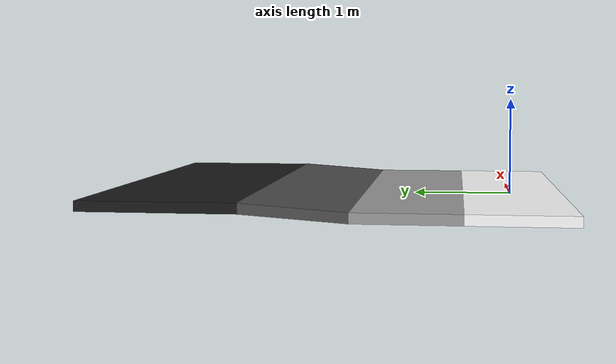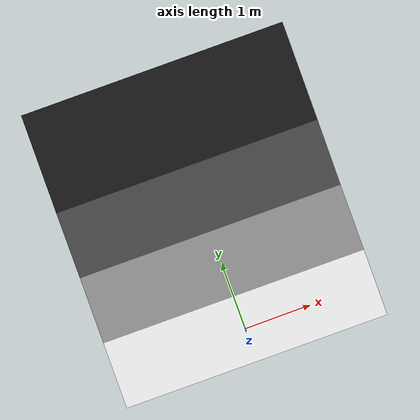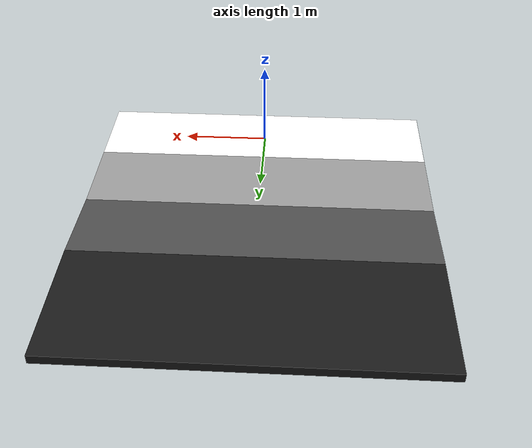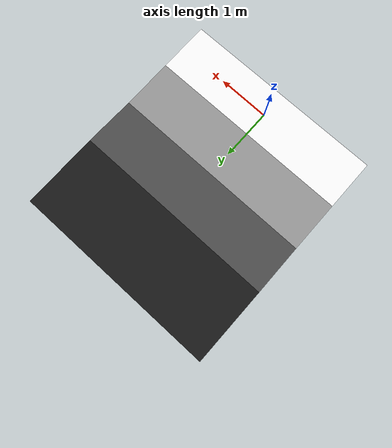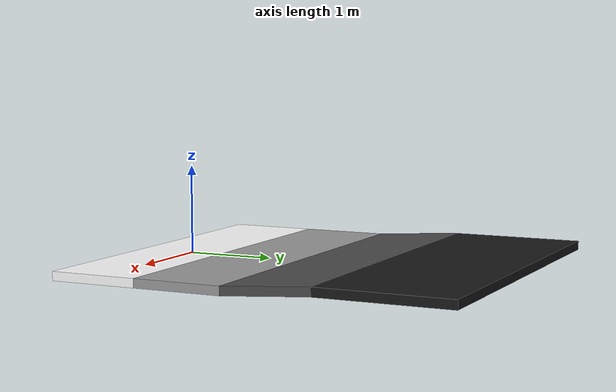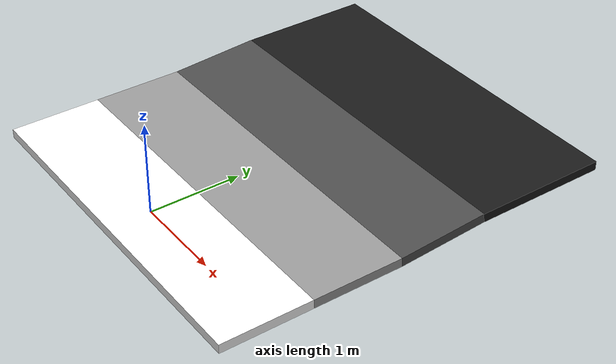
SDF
<?xml version="1.0" ?>
<sdf version="1.9">
	<model name="ground">
		<static>true</static>
		<link name="link_lower_area">
			<pose>0 0 0 0 0 0</pose>
			<visual name="nest_area">
				<pose>0 0 0 0 0 0</pose>
				<geometry>
					<box>
						<size>4.0 1.0 0.1</size>
					</box>
				</geometry>
				<material>
					<diffuse>1 1 1 1</diffuse>
				</material>
			</visual>
			<visual name="cache_area">
				<pose>0 1.0 0 0 0 0</pose>
				<geometry>
					<box>
						<size>4.0 1.0 0.1</size>
					</box>
				</geometry>
				<material>
					<diffuse>0.6 0.6 0.6 1</diffuse>
				</material>
			</visual>
			<collision name="collision_lower_area">
				<pose>0 0.5 0 0 0 0</pose>
				<geometry>
					<box>
						<size>4.0 2.0 0.1</size>
					</box>
				</geometry>
			</collision>
		</link>
		<link name="link_slope">
			<pose relative_to="joint_cache_slope">0 0.5 0 0 0 0</pose>
			<visual name="visual_slope">
				<geometry>
					<box>
						<size>4.0 1.0 0.1</size>
					</box>
				</geometry>
				<material>
					<diffuse>0.3 0.3 0.3 1</diffuse>
				</material>
			</visual>
			<collision name="collision_slope">
				<geometry>
					<box>
						<size>4.0 1.0 0.1</size>
					</box>
				</geometry>
			</collision>
		</link>
		<link name="link_source_area">
			<pose relative_to="joint_slope_source">0 0.75 0 0 0 0</pose>
			<visual name="visual_source_area">
				<geometry>
					<box>
						<size>4.0 1.5 0.1</size>
					</box>
				</geometry>
				<material>
					<diffuse>0.1 0.1 0.1 1</diffuse>
				</material>
			</visual>
			<collision name="collision_source_area">
				<geometry>
					<box>
						<size>4.0 1.5 0.1</size>
					</box>
				</geometry>
			</collision>
		</link>
		<joint name="joint_cache_slope" type="fixed">
			<parent>link_lower_area</parent>
			<child>link_slope</child>
			<pose relative_to="link_lower_area">0 1.5 0 0.07 0  0</pose>
			<axis>
				<xyz>1 0 0</xyz>
			</axis>
		</joint>
		<joint name="joint_slope_source" type="fixed">
			<parent>link_slope</parent>
			<child>link_source_area</child>
			<pose relative_to="link_slope">0 0.49 0 -0.07 0 0</pose>
			<axis>
				<xyz>1 0 0</xyz>
			</axis>
		</joint>
	</model>
</sdf>
